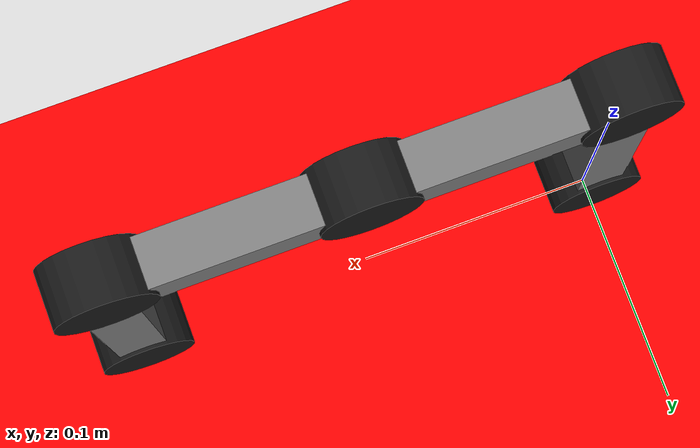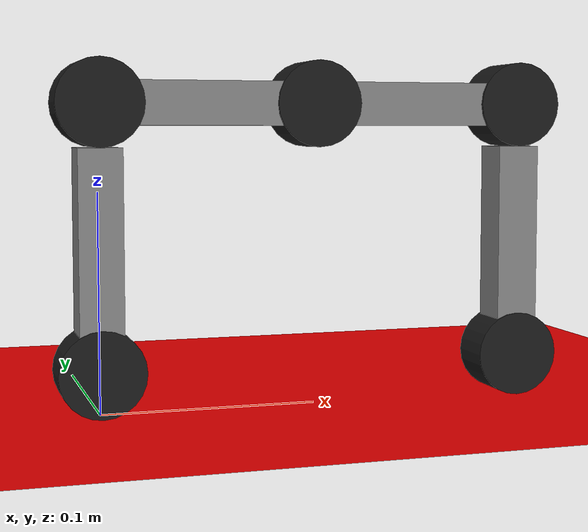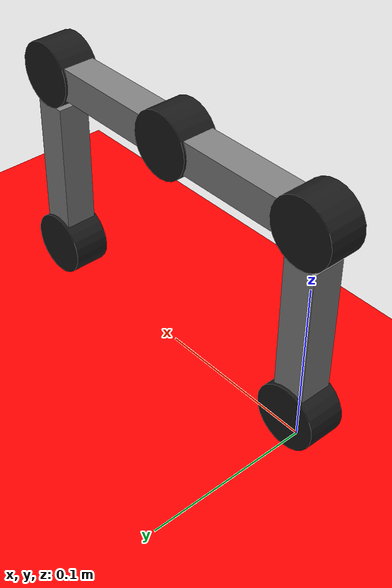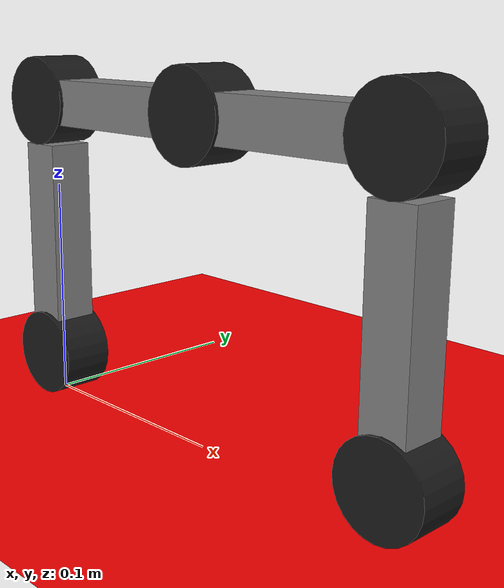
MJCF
<mujoco>
    <worldbody>
        <light diffuse="0.7 0.7 0.7" pos="0 0 1"/>
        <geom name="ground" type="plane" size="10 10 0.1" rgba="1 0 0 1"/>
        <body pos="0 0 0">
            <joint name="left_joint1" pos="0 0 0.0198" axis="0 1 0"/>
            <geom type="cylinder" euler="90 0 0" pos="0 0 0.0198" size="0.0198 0.0115" rgba="0.1 0.1 0.1 1"  mass="0.065"/>
            <geom type="box" size="0.01 0.01 0.05" pos="0 0 0.0698" mass="0.02"/>
            <body pos="0 0 0.1198">
                <joint name="left_joint2" pos="0 0 0.0198" axis="0 1 0"/>
                <geom type="cylinder" euler="90 0 0" pos="0 0 0.0198" size="0.0198 0.0115" rgba="0.1 0.1 0.1 1" mass="0.065"/>
                <body name="link">
                    <geom type="box" euler="0 90 0" size="0.01 0.01 0.05" pos="0.05 0 0.0198" mass="0.02"/>
                </body>
            </body>
        </body>

        <body pos="0.2 0 0">
            <joint name="right_joint1" pos="0 0 0.0198" axis="0 1 0"/>
            <geom type="cylinder" euler="90 0 0" pos="0 0 0.0198" size="0.0198 0.0115" rgba="0.1 0.1 0.1 1" mass="0.065"/>
            <geom type="box" size="0.01 0.01 0.05" pos="0 0 0.0698" mass="0.02"/>
            <body name="link2" pos="0 0 0.1198">
                <joint name="right_joint2" pos="0 0 0.0198" axis="0 1 0"/>
                <geom type="cylinder" euler="90 0 0" pos="0 0 0.0198" size="0.0198 0.0115" rgba="0.1 0.1 0.1 1" mass="0.065"/>
                <geom type="box" euler="0 90 0" size="0.01 0.01 0.05" pos="-0.05 0 0.0198" mass="0.02"/>

               <body name="ee" pos="0 0 0">
                   <geom type="cylinder" euler="90 0 0" pos="-0.1 0 0.0198" size="0.0198 0.0115" rgba="0.1 0.1 0.1 1"/>
               </body>
            </body>
        </body>

    </worldbody>
    <equality>
        <connect name="kinematic_link" active="true" body1="link2" body2="link" anchor="-0.1 0 0.0198"/>
    </equality>

</mujoco>
